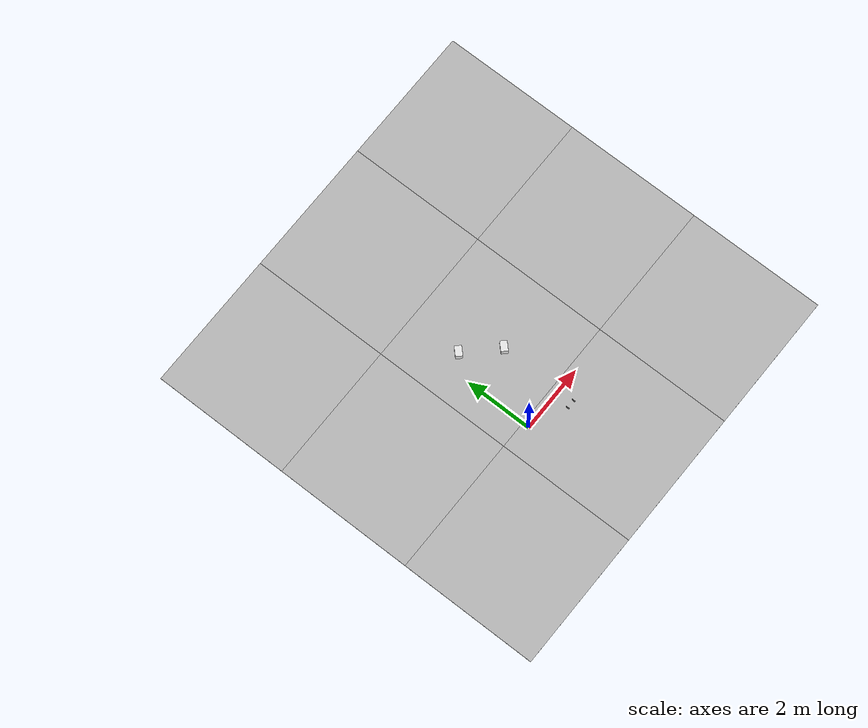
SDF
<sdf version='1.6'><world name='default'>
    <light name='sun_light' type='directional'>
      <pose frame=''>0 0 10 0 -0 0</pose>
      <diffuse>0.5 0.5 0.5 1</diffuse>
      <specular>0.1 0.1 0.1 1</specular>
      <direction>0.1 0.1 -0.9</direction>
      <attenuation>
        <range>20</range>
        <constant>0.5</constant>
        <linear>0.01</linear>
        <quadratic>0.001</quadratic>
      </attenuation>
      <cast_shadows>1</cast_shadows>
    </light>

    <model name='Tile/0-0'>
      <static>1</static>
      <link name='link'>
        <collision name='collision'>
          <geometry>
            <plane>
              <normal>0 0 1</normal>
              <size>4.096 4.096</size>
            </plane>
          </geometry>
          <surface>
            <friction>
              <ode>
                <mu>100</mu>
                <mu2>50</mu2>
              </ode>
              <torsional>
                <ode/>
              </torsional>
            </friction>
            <contact>
              <ode/>
            </contact>
            <bounce/>
          </surface>
          <max_contacts>10</max_contacts>
        </collision>
        <visual name='visual'>
          <cast_shadows>0</cast_shadows>
          <geometry>
            <plane>
              <normal>0 0 1</normal>
              <size>4.096 4.096</size>
            </plane>
          </geometry>
          <material>
            <script>
              <uri>file://materials/scripts</uri>
              <uri>file://materials/textures</uri>
              <name>Tile/5eab350b8220ac9944dbdfa4ac3288c7c17e24c3bf5df0dfcf6173d64dae00a1</name>
            </script>
          </material>
        </visual>
        <self_collide>0</self_collide>
        <enable_wind>0</enable_wind>
        <kinematic>0</kinematic>
      </link>
      <pose frame=''>-2.8561630560342612 -1.8519999999999999 0 0 -0 0</pose>
    </model>

    <model name='Tile/0-1'>
      <static>1</static>
      <link name='link'>
        <collision name='collision'>
          <geometry>
            <plane>
              <normal>0 0 1</normal>
              <size>4.096 4.096</size>
            </plane>
          </geometry>
          <surface>
            <friction>
              <ode>
                <mu>100</mu>
                <mu2>50</mu2>
              </ode>
              <torsional>
                <ode/>
              </torsional>
            </friction>
            <contact>
              <ode/>
            </contact>
            <bounce/>
          </surface>
          <max_contacts>10</max_contacts>
        </collision>
        <visual name='visual'>
          <cast_shadows>0</cast_shadows>
          <geometry>
            <plane>
              <normal>0 0 1</normal>
              <size>4.096 4.096</size>
            </plane>
          </geometry>
          <material>
            <script>
              <uri>file://materials/scripts</uri>
              <uri>file://materials/textures</uri>
              <name>Tile/e9645c33f871250dfad0b713d2a33b8c3b514447baa8c23e2e863dc3866e834d</name>
            </script>
          </material>
        </visual>
        <self_collide>0</self_collide>
        <enable_wind>0</enable_wind>
        <kinematic>0</kinematic>
      </link>
      <pose frame=''>-2.8561630560342612 2.244 0 0 -0 0</pose>
    </model>

    <model name='Tile/0-2'>
      <static>1</static>
      <link name='link'>
        <collision name='collision'>
          <geometry>
            <plane>
              <normal>0 0 1</normal>
              <size>4.096 4.096</size>
            </plane>
          </geometry>
          <surface>
            <friction>
              <ode>
                <mu>100</mu>
                <mu2>50</mu2>
              </ode>
              <torsional>
                <ode/>
              </torsional>
            </friction>
            <contact>
              <ode/>
            </contact>
            <bounce/>
          </surface>
          <max_contacts>10</max_contacts>
        </collision>
        <visual name='visual'>
          <cast_shadows>0</cast_shadows>
          <geometry>
            <plane>
              <normal>0 0 1</normal>
              <size>4.096 4.096</size>
            </plane>
          </geometry>
          <material>
            <script>
              <uri>file://materials/scripts</uri>
              <uri>file://materials/textures</uri>
              <name>Tile/e3625cf87b429677b46abcdf6f4dcd8b19bc4b15191f476b10f8547833989e4e</name>
            </script>
          </material>
        </visual>
        <self_collide>0</self_collide>
        <enable_wind>0</enable_wind>
        <kinematic>0</kinematic>
      </link>
      <pose frame=''>-2.8561630560342612 6.34 0 0 -0 0</pose>
    </model>

    <model name='Tile/1-0'>
      <static>1</static>
      <link name='link'>
        <collision name='collision'>
          <geometry>
            <plane>
              <normal>0 0 1</normal>
              <size>4.096 4.096</size>
            </plane>
          </geometry>
          <surface>
            <friction>
              <ode>
                <mu>100</mu>
                <mu2>50</mu2>
              </ode>
              <torsional>
                <ode/>
              </torsional>
            </friction>
            <contact>
              <ode/>
            </contact>
            <bounce/>
          </surface>
          <max_contacts>10</max_contacts>
        </collision>
        <visual name='visual'>
          <cast_shadows>0</cast_shadows>
          <geometry>
            <plane>
              <normal>0 0 1</normal>
              <size>4.096 4.096</size>
            </plane>
          </geometry>
          <material>
            <script>
              <uri>file://materials/scripts</uri>
              <uri>file://materials/textures</uri>
              <name>Tile/dde59ed2264e0dde5111e36e27e09747a3dcd445b15ada3e56111d0f06be2174</name>
            </script>
          </material>
        </visual>
        <self_collide>0</self_collide>
        <enable_wind>0</enable_wind>
        <kinematic>0</kinematic>
      </link>
      <pose frame=''>1.2398369439657388 -1.8519999999999999 0 0 -0 0</pose>
    </model>

    <model name='Tile/1-1'>
      <static>1</static>
      <link name='link'>
        <collision name='collision'>
          <geometry>
            <plane>
              <normal>0 0 1</normal>
              <size>4.096 4.096</size>
            </plane>
          </geometry>
          <surface>
            <friction>
              <ode>
                <mu>100</mu>
                <mu2>50</mu2>
              </ode>
              <torsional>
                <ode/>
              </torsional>
            </friction>
            <contact>
              <ode/>
            </contact>
            <bounce/>
          </surface>
          <max_contacts>10</max_contacts>
        </collision>
        <visual name='visual'>
          <cast_shadows>0</cast_shadows>
          <geometry>
            <plane>
              <normal>0 0 1</normal>
              <size>4.096 4.096</size>
            </plane>
          </geometry>
          <material>
            <script>
              <uri>file://materials/scripts</uri>
              <uri>file://materials/textures</uri>
              <name>Tile/3f51db01fb76bdc4000b52475e6908cbd9ecf1bad3d1f96fed0c664af3401834</name>
            </script>
          </material>
        </visual>
        <self_collide>0</self_collide>
        <enable_wind>0</enable_wind>
        <kinematic>0</kinematic>
      </link>
      <pose frame=''>1.2398369439657388 2.244 0 0 -0 0</pose>
    </model>

    <model name='Tile/1-2'>
      <static>1</static>
      <link name='link'>
        <collision name='collision'>
          <geometry>
            <plane>
              <normal>0 0 1</normal>
              <size>4.096 4.096</size>
            </plane>
          </geometry>
          <surface>
            <friction>
              <ode>
                <mu>100</mu>
                <mu2>50</mu2>
              </ode>
              <torsional>
                <ode/>
              </torsional>
            </friction>
            <contact>
              <ode/>
            </contact>
            <bounce/>
          </surface>
          <max_contacts>10</max_contacts>
        </collision>
        <visual name='visual'>
          <cast_shadows>0</cast_shadows>
          <geometry>
            <plane>
              <normal>0 0 1</normal>
              <size>4.096 4.096</size>
            </plane>
          </geometry>
          <material>
            <script>
              <uri>file://materials/scripts</uri>
              <uri>file://materials/textures</uri>
              <name>Tile/f0d093fa3fa3fdc6c01be34cb7fcaa42c810931d858e0c956a90550d12252043</name>
            </script>
          </material>
        </visual>
        <self_collide>0</self_collide>
        <enable_wind>0</enable_wind>
        <kinematic>0</kinematic>
      </link>
      <pose frame=''>1.2398369439657388 6.34 0 0 -0 0</pose>
    </model>

    <model name='Tile/2-0'>
      <static>1</static>
      <link name='link'>
        <collision name='collision'>
          <geometry>
            <plane>
              <normal>0 0 1</normal>
              <size>4.096 4.096</size>
            </plane>
          </geometry>
          <surface>
            <friction>
              <ode>
                <mu>100</mu>
                <mu2>50</mu2>
              </ode>
              <torsional>
                <ode/>
              </torsional>
            </friction>
            <contact>
              <ode/>
            </contact>
            <bounce/>
          </surface>
          <max_contacts>10</max_contacts>
        </collision>
        <visual name='visual'>
          <cast_shadows>0</cast_shadows>
          <geometry>
            <plane>
              <normal>0 0 1</normal>
              <size>4.096 4.096</size>
            </plane>
          </geometry>
          <material>
            <script>
              <uri>file://materials/scripts</uri>
              <uri>file://materials/textures</uri>
              <name>Tile/5eab350b8220ac9944dbdfa4ac3288c7c17e24c3bf5df0dfcf6173d64dae00a1</name>
            </script>
          </material>
        </visual>
        <self_collide>0</self_collide>
        <enable_wind>0</enable_wind>
        <kinematic>0</kinematic>
      </link>
      <pose frame=''>5.335836943965739 -1.8519999999999999 0 0 -0 0</pose>
    </model>

    <model name='Tile/2-1'>
      <static>1</static>
      <link name='link'>
        <collision name='collision'>
          <geometry>
            <plane>
              <normal>0 0 1</normal>
              <size>4.096 4.096</size>
            </plane>
          </geometry>
          <surface>
            <friction>
              <ode>
                <mu>100</mu>
                <mu2>50</mu2>
              </ode>
              <torsional>
                <ode/>
              </torsional>
            </friction>
            <contact>
              <ode/>
            </contact>
            <bounce/>
          </surface>
          <max_contacts>10</max_contacts>
        </collision>
        <visual name='visual'>
          <cast_shadows>0</cast_shadows>
          <geometry>
            <plane>
              <normal>0 0 1</normal>
              <size>4.096 4.096</size>
            </plane>
          </geometry>
          <material>
            <script>
              <uri>file://materials/scripts</uri>
              <uri>file://materials/textures</uri>
              <name>Tile/5eab350b8220ac9944dbdfa4ac3288c7c17e24c3bf5df0dfcf6173d64dae00a1</name>
            </script>
          </material>
        </visual>
        <self_collide>0</self_collide>
        <enable_wind>0</enable_wind>
        <kinematic>0</kinematic>
      </link>
      <pose frame=''>5.335836943965739 2.244 0 0 -0 0</pose>
    </model>

    <model name='Tile/2-2'>
      <static>1</static>
      <link name='link'>
        <collision name='collision'>
          <geometry>
            <plane>
              <normal>0 0 1</normal>
              <size>4.096 4.096</size>
            </plane>
          </geometry>
          <surface>
            <friction>
              <ode>
                <mu>100</mu>
                <mu2>50</mu2>
              </ode>
              <torsional>
                <ode/>
              </torsional>
            </friction>
            <contact>
              <ode/>
            </contact>
            <bounce/>
          </surface>
          <max_contacts>10</max_contacts>
        </collision>
        <visual name='visual'>
          <cast_shadows>0</cast_shadows>
          <geometry>
            <plane>
              <normal>0 0 1</normal>
              <size>4.096 4.096</size>
            </plane>
          </geometry>
          <material>
            <script>
              <uri>file://materials/scripts</uri>
              <uri>file://materials/textures</uri>
              <name>Tile/5eab350b8220ac9944dbdfa4ac3288c7c17e24c3bf5df0dfcf6173d64dae00a1</name>
            </script>
          </material>
        </visual>
        <self_collide>0</self_collide>
        <enable_wind>0</enable_wind>
        <kinematic>0</kinematic>
      </link>
      <pose frame=''>5.335836943965739 6.34 0 0 -0 0</pose>
    </model>

    <model name='Obstacle/-19/0'>
      <pose frame=''>1.3131727983645294 1.8545941546018394 0.1 0 0 2.356194490192345</pose>
      <link name='link'>
        <inertial>
          <mass>10</mass>
          <inertia>
            <ixx>0.166667</ixx>
            <ixy>0</ixy>
            <ixz>0</ixz>
            <iyy>0.166667</iyy>
            <iyz>0</iyz>
            <izz>0.166667</izz>
          </inertia>
        </inertial>
        <collision name='collision'>
          <geometry>
            <box>
              <size>0.2 0.3 0.2</size>
            </box>
          </geometry>
          <max_contacts>10</max_contacts>
          <surface>
            <contact>
              <ode/>
            </contact>
            <bounce/>
            <friction>
              <torsional>
                <ode/>
              </torsional>
              <ode/>
            </friction>
          </surface>
        </collision>
        <visual name='visual'>
          <geometry>
            <box>
              <size>0.2 0.3 0.2</size>
            </box>
          </geometry>
          <material>
            <script>
              <name>Gazebo/White</name>
              <uri>file://media/materials/scripts/gazebo.material</uri>
            </script>
          </material>
        </visual>
        <self_collide>0</self_collide>
        <enable_wind>0</enable_wind>
        <kinematic>0</kinematic>
      </link>
    </model>

    <model name='Obstacle/-24/0'>
      <pose frame=''>0.4646446609406726 2.7031222920256965 0.1 0 0 2.356194490192345</pose>
      <link name='link'>
        <inertial>
          <mass>10</mass>
          <inertia>
            <ixx>0.166667</ixx>
            <ixy>0</ixy>
            <ixz>0</ixz>
            <iyy>0.166667</iyy>
            <iyz>0</iyz>
            <izz>0.166667</izz>
          </inertia>
        </inertial>
        <collision name='collision'>
          <geometry>
            <box>
              <size>0.2 0.3 0.2</size>
            </box>
          </geometry>
          <max_contacts>10</max_contacts>
          <surface>
            <contact>
              <ode/>
            </contact>
            <bounce/>
            <friction>
              <torsional>
                <ode/>
              </torsional>
              <ode/>
            </friction>
          </surface>
        </collision>
        <visual name='visual'>
          <geometry>
            <box>
              <size>0.2 0.3 0.2</size>
            </box>
          </geometry>
          <material>
            <script>
              <name>Gazebo/White</name>
              <uri>file://media/materials/scripts/gazebo.material</uri>
            </script>
          </material>
        </visual>
        <self_collide>0</self_collide>
        <enable_wind>0</enable_wind>
        <kinematic>0</kinematic>
      </link>
    </model>

    <model name='Sign/-13'>
      <static>1</static>
      <link name='link'>
        <visual name='visual'>
          <cast_shadows>0</cast_shadows>
          <geometry>
            <plane>
              <normal>0 0 1</normal>
              <size>0.1 0.1</size>
            </plane>
          </geometry>
          <material>
            <script>
              <uri>file://materials/scripts</uri>
              <uri>file://materials/textures</uri>
              <name>Sign/stvo-209-10</name>
            </script>
          </material>
        </visual>
        <self_collide>0</self_collide>
        <enable_wind>0</enable_wind>
        <kinematic>0</kinematic>
      </link>
      <pose frame=''>1.25 -0.49999999999999994 0.2 1.5707963267948966 0 4.71238898038469</pose>
    </model>

    <model name='Sign/-14'>
      <static>1</static>
      <link name='link'>
        <visual name='visual'>
          <cast_shadows>0</cast_shadows>
          <geometry>
            <plane>
              <normal>0 0 1</normal>
              <size>0.1 0.1</size>
            </plane>
          </geometry>
          <material>
            <script>
              <uri>file://materials/scripts</uri>
              <uri>file://materials/textures</uri>
              <name>Sign/stvo-205</name>
            </script>
          </material>
        </visual>
        <self_collide>0</self_collide>
        <enable_wind>0</enable_wind>
        <kinematic>0</kinematic>
      </link>
      <pose frame=''>0.9999999999999999 -0.49999999999999994 0.2 1.5707963267948966 0 4.71238898038469</pose>
    </model>
    </world></sdf>
